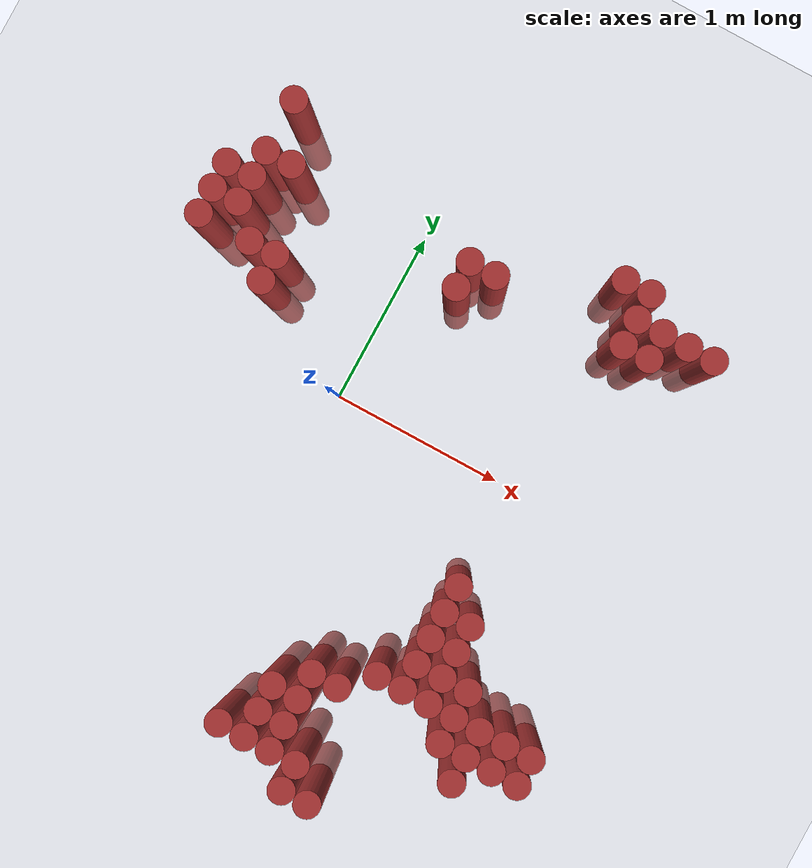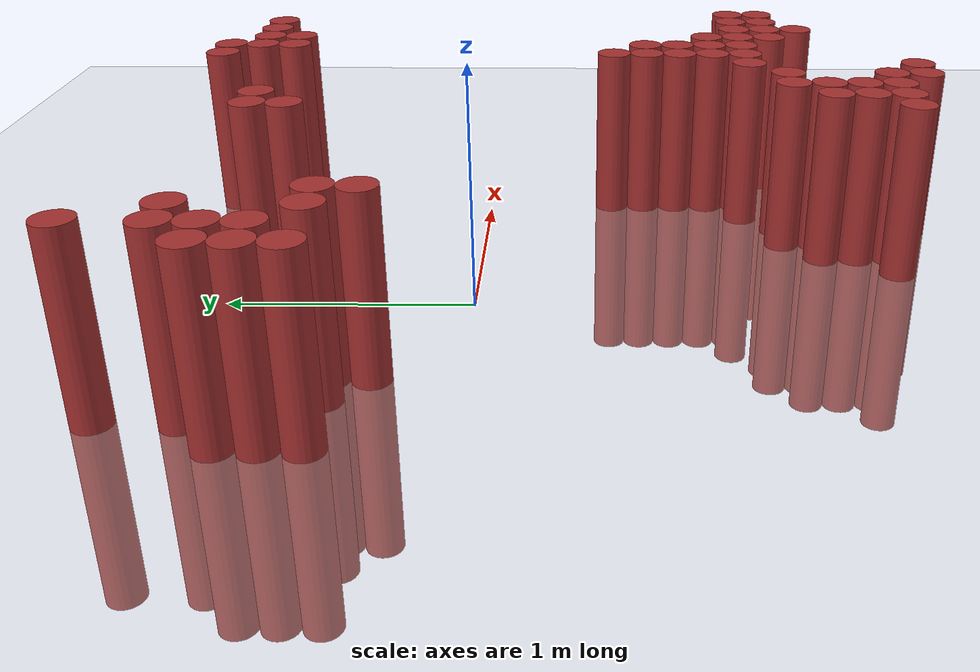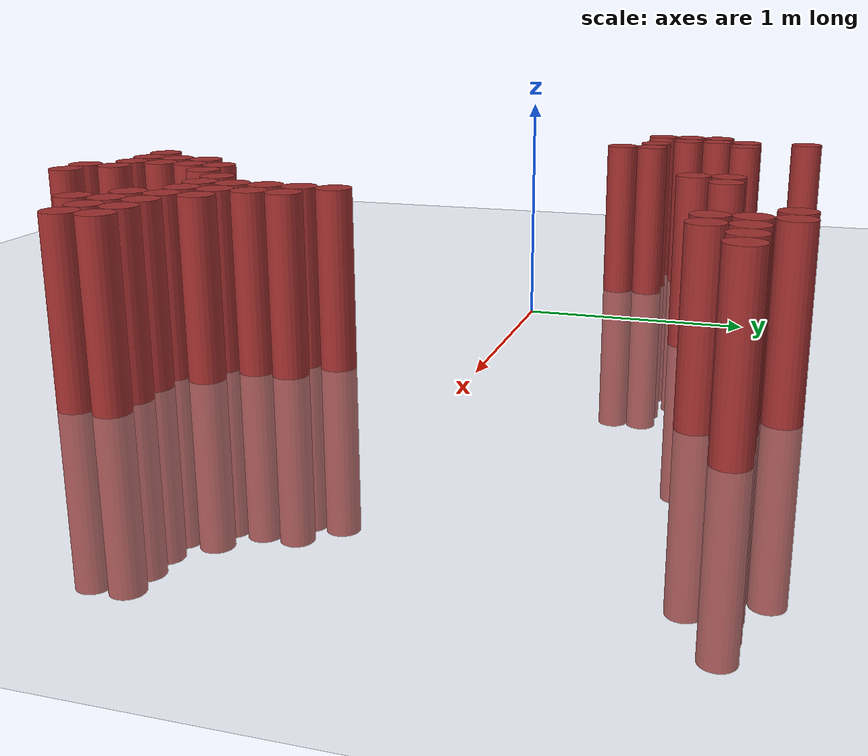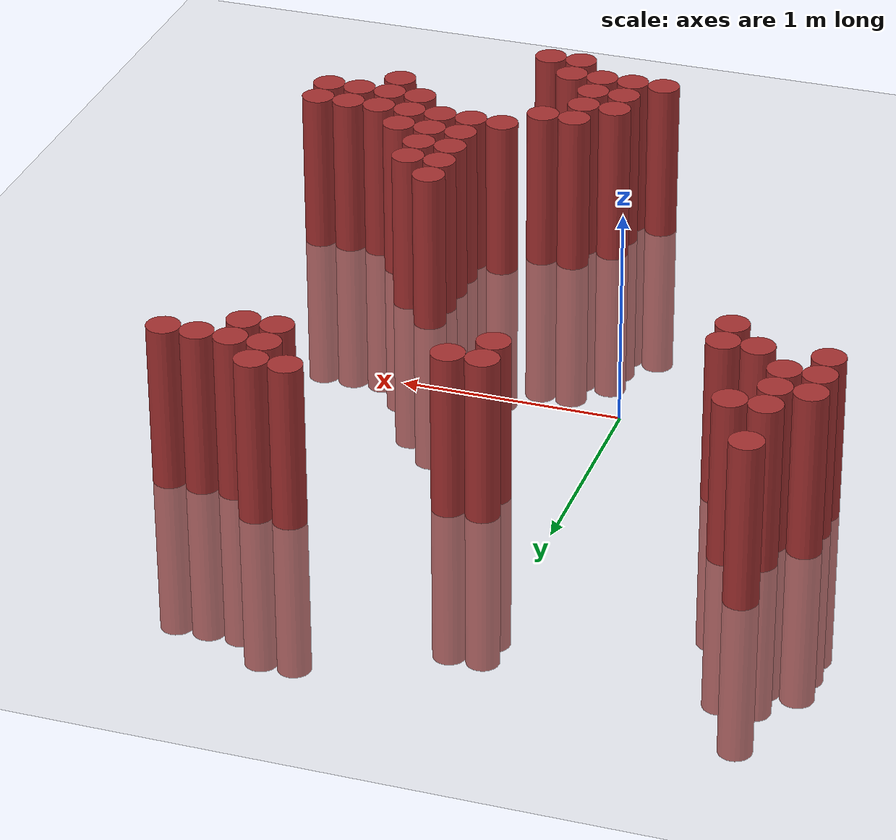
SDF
<sdf version="1.6">
 <world name="default">
  <model name="ground_plane">
   <static>1</static>
   <link name="link">
    <collision name="collision">
     <geometry><plane><normal>0 0 1</normal><size>100 100</size></plane></geometry>
     <surface><friction><ode><mu>100</mu><mu2>50</mu2></ode></friction></surface>
    </collision>
    <visual name="visual">
     <cast_shadows>0</cast_shadows>
     <geometry><plane><normal>0 0 1</normal><size>100 100</size></plane></geometry>
     <material>
      <script><uri>file://media/materials/scripts/gazebo.material</uri><name>Gazebo/Grey</name></script>
     </material>
    </visual>
   </link>
  </model>
  <model name="unit_cylinder_343">
   <static>1</static>
   <pose>-1.025000 0.475000 0.000000 0.000000 0.000000 0.000000</pose>
   <link name="link">
    <inertial>
     <mass>1</mass>
     <inertia><ixx>0.145833</ixx><ixy>0</ixy><ixz>0</ixz><iyy>0.145833</iyy><iyz>0</iyz><izz>0.125</izz></inertia>
    </inertial>
    <collision name="collision">
     <geometry><cylinder><radius>0.075000</radius><length>1.5</length></cylinder></geometry>
    </collision>
    <visual name="visual">
     <geometry><cylinder><radius>0.075000</radius><length>1.5</length></cylinder></geometry>
     <material>
      <ambient>0.648000 0.192000 0.192000 1</ambient>
      <diffuse>0.648000 0.192000 0.192000 1</diffuse>
     </material>
     <material>
      <script><name>Gazebo/Grey</name><uri>file://media/materials/scripts/gazebo.material</uri></script>
     </material>
    </visual>
   </link>
  </model>
  <model name="unit_cylinder_344">
   <static>1</static>
   <pose>-1.025000 0.625000 0.000000 0.000000 0.000000 0.000000</pose>
   <link name="link">
    <inertial>
     <mass>1</mass>
     <inertia><ixx>0.145833</ixx><ixy>0</ixy><ixz>0</ixz><iyy>0.145833</iyy><iyz>0</iyz><izz>0.125</izz></inertia>
    </inertial>
    <collision name="collision">
     <geometry><cylinder><radius>0.075000</radius><length>1.5</length></cylinder></geometry>
    </collision>
    <visual name="visual">
     <geometry><cylinder><radius>0.075000</radius><length>1.5</length></cylinder></geometry>
     <material>
      <ambient>0.648000 0.192000 0.192000 1</ambient>
      <diffuse>0.648000 0.192000 0.192000 1</diffuse>
     </material>
     <material>
      <script><name>Gazebo/Grey</name><uri>file://media/materials/scripts/gazebo.material</uri></script>
     </material>
    </visual>
   </link>
  </model>
  <model name="unit_cylinder_345">
   <static>1</static>
   <pose>-1.025000 0.775000 0.000000 0.000000 0.000000 0.000000</pose>
   <link name="link">
    <inertial>
     <mass>1</mass>
     <inertia><ixx>0.145833</ixx><ixy>0</ixy><ixz>0</ixz><iyy>0.145833</iyy><iyz>0</iyz><izz>0.125</izz></inertia>
    </inertial>
    <collision name="collision">
     <geometry><cylinder><radius>0.075000</radius><length>1.5</length></cylinder></geometry>
    </collision>
    <visual name="visual">
     <geometry><cylinder><radius>0.075000</radius><length>1.5</length></cylinder></geometry>
     <material>
      <ambient>0.648000 0.192000 0.192000 1</ambient>
      <diffuse>0.648000 0.192000 0.192000 1</diffuse>
     </material>
     <material>
      <script><name>Gazebo/Grey</name><uri>file://media/materials/scripts/gazebo.material</uri></script>
     </material>
    </visual>
   </link>
  </model>
  <model name="unit_cylinder_347">
   <static>1</static>
   <pose>-0.875000 0.625000 0.000000 0.000000 0.000000 0.000000</pose>
   <link name="link">
    <inertial>
     <mass>1</mass>
     <inertia><ixx>0.145833</ixx><ixy>0</ixy><ixz>0</ixz><iyy>0.145833</iyy><iyz>0</iyz><izz>0.125</izz></inertia>
    </inertial>
    <collision name="collision">
     <geometry><cylinder><radius>0.075000</radius><length>1.5</length></cylinder></geometry>
    </collision>
    <visual name="visual">
     <geometry><cylinder><radius>0.075000</radius><length>1.5</length></cylinder></geometry>
     <material>
      <ambient>0.648000 0.192000 0.192000 1</ambient>
      <diffuse>0.648000 0.192000 0.192000 1</diffuse>
     </material>
     <material>
      <script><name>Gazebo/Grey</name><uri>file://media/materials/scripts/gazebo.material</uri></script>
     </material>
    </visual>
   </link>
  </model>
  <model name="unit_cylinder_348">
   <static>1</static>
   <pose>-0.875000 0.775000 0.000000 0.000000 0.000000 0.000000</pose>
   <link name="link">
    <inertial>
     <mass>1</mass>
     <inertia><ixx>0.145833</ixx><ixy>0</ixy><ixz>0</ixz><iyy>0.145833</iyy><iyz>0</iyz><izz>0.125</izz></inertia>
    </inertial>
    <collision name="collision">
     <geometry><cylinder><radius>0.075000</radius><length>1.5</length></cylinder></geometry>
    </collision>
    <visual name="visual">
     <geometry><cylinder><radius>0.075000</radius><length>1.5</length></cylinder></geometry>
     <material>
      <ambient>0.648000 0.192000 0.192000 1</ambient>
      <diffuse>0.648000 0.192000 0.192000 1</diffuse>
     </material>
     <material>
      <script><name>Gazebo/Grey</name><uri>file://media/materials/scripts/gazebo.material</uri></script>
     </material>
    </visual>
   </link>
  </model>
  <model name="unit_cylinder_349">
   <static>1</static>
   <pose>-0.875000 0.925000 0.000000 0.000000 0.000000 0.000000</pose>
   <link name="link">
    <inertial>
     <mass>1</mass>
     <inertia><ixx>0.145833</ixx><ixy>0</ixy><ixz>0</ixz><iyy>0.145833</iyy><iyz>0</iyz><izz>0.125</izz></inertia>
    </inertial>
    <collision name="collision">
     <geometry><cylinder><radius>0.075000</radius><length>1.5</length></cylinder></geometry>
    </collision>
    <visual name="visual">
     <geometry><cylinder><radius>0.075000</radius><length>1.5</length></cylinder></geometry>
     <material>
      <ambient>0.648000 0.192000 0.192000 1</ambient>
      <diffuse>0.648000 0.192000 0.192000 1</diffuse>
     </material>
     <material>
      <script><name>Gazebo/Grey</name><uri>file://media/materials/scripts/gazebo.material</uri></script>
     </material>
    </visual>
   </link>
  </model>
  <model name="unit_cylinder_350">
   <static>1</static>
   <pose>-0.875000 1.225000 0.000000 0.000000 0.000000 0.000000</pose>
   <link name="link">
    <inertial>
     <mass>1</mass>
     <inertia><ixx>0.145833</ixx><ixy>0</ixy><ixz>0</ixz><iyy>0.145833</iyy><iyz>0</iyz><izz>0.125</izz></inertia>
    </inertial>
    <collision name="collision">
     <geometry><cylinder><radius>0.075000</radius><length>1.5</length></cylinder></geometry>
    </collision>
    <visual name="visual">
     <geometry><cylinder><radius>0.075000</radius><length>1.5</length></cylinder></geometry>
     <material>
      <ambient>0.648000 0.192000 0.192000 1</ambient>
      <diffuse>0.648000 0.192000 0.192000 1</diffuse>
     </material>
     <material>
      <script><name>Gazebo/Grey</name><uri>file://media/materials/scripts/gazebo.material</uri></script>
     </material>
    </visual>
   </link>
  </model>
  <model name="unit_cylinder_353">
   <static>1</static>
   <pose>-0.725000 0.475000 0.000000 0.000000 0.000000 0.000000</pose>
   <link name="link">
    <inertial>
     <mass>1</mass>
     <inertia><ixx>0.145833</ixx><ixy>0</ixy><ixz>0</ixz><iyy>0.145833</iyy><iyz>0</iyz><izz>0.125</izz></inertia>
    </inertial>
    <collision name="collision">
     <geometry><cylinder><radius>0.075000</radius><length>1.5</length></cylinder></geometry>
    </collision>
    <visual name="visual">
     <geometry><cylinder><radius>0.075000</radius><length>1.5</length></cylinder></geometry>
     <material>
      <ambient>0.648000 0.192000 0.192000 1</ambient>
      <diffuse>0.648000 0.192000 0.192000 1</diffuse>
     </material>
     <material>
      <script><name>Gazebo/Grey</name><uri>file://media/materials/scripts/gazebo.material</uri></script>
     </material>
    </visual>
   </link>
  </model>
  <model name="unit_cylinder_354">
   <static>1</static>
   <pose>-0.725000 0.925000 0.000000 0.000000 0.000000 0.000000</pose>
   <link name="link">
    <inertial>
     <mass>1</mass>
     <inertia><ixx>0.145833</ixx><ixy>0</ixy><ixz>0</ixz><iyy>0.145833</iyy><iyz>0</iyz><izz>0.125</izz></inertia>
    </inertial>
    <collision name="collision">
     <geometry><cylinder><radius>0.075000</radius><length>1.5</length></cylinder></geometry>
    </collision>
    <visual name="visual">
     <geometry><cylinder><radius>0.075000</radius><length>1.5</length></cylinder></geometry>
     <material>
      <ambient>0.648000 0.192000 0.192000 1</ambient>
      <diffuse>0.648000 0.192000 0.192000 1</diffuse>
     </material>
     <material>
      <script><name>Gazebo/Grey</name><uri>file://media/materials/scripts/gazebo.material</uri></script>
     </material>
    </visual>
   </link>
  </model>
  <model name="unit_cylinder_358">
   <static>1</static>
   <pose>-0.575000 0.325000 0.000000 0.000000 0.000000 0.000000</pose>
   <link name="link">
    <inertial>
     <mass>1</mass>
     <inertia><ixx>0.145833</ixx><ixy>0</ixy><ixz>0</ixz><iyy>0.145833</iyy><iyz>0</iyz><izz>0.125</izz></inertia>
    </inertial>
    <collision name="collision">
     <geometry><cylinder><radius>0.075000</radius><length>1.5</length></cylinder></geometry>
    </collision>
    <visual name="visual">
     <geometry><cylinder><radius>0.075000</radius><length>1.5</length></cylinder></geometry>
     <material>
      <ambient>0.648000 0.192000 0.192000 1</ambient>
      <diffuse>0.648000 0.192000 0.192000 1</diffuse>
     </material>
     <material>
      <script><name>Gazebo/Grey</name><uri>file://media/materials/scripts/gazebo.material</uri></script>
     </material>
    </visual>
   </link>
  </model>
  <model name="unit_cylinder_359">
   <static>1</static>
   <pose>-0.575000 0.475000 0.000000 0.000000 0.000000 0.000000</pose>
   <link name="link">
    <inertial>
     <mass>1</mass>
     <inertia><ixx>0.145833</ixx><ixy>0</ixy><ixz>0</ixz><iyy>0.145833</iyy><iyz>0</iyz><izz>0.125</izz></inertia>
    </inertial>
    <collision name="collision">
     <geometry><cylinder><radius>0.075000</radius><length>1.5</length></cylinder></geometry>
    </collision>
    <visual name="visual">
     <geometry><cylinder><radius>0.075000</radius><length>1.5</length></cylinder></geometry>
     <material>
      <ambient>0.648000 0.192000 0.192000 1</ambient>
      <diffuse>0.648000 0.192000 0.192000 1</diffuse>
     </material>
     <material>
      <script><name>Gazebo/Grey</name><uri>file://media/materials/scripts/gazebo.material</uri></script>
     </material>
    </visual>
   </link>
  </model>
  <model name="unit_cylinder_368">
   <static>1</static>
   <pose>0.325000 -1.775000 0.000000 0.000000 0.000000 0.000000</pose>
   <link name="link">
    <inertial>
     <mass>1</mass>
     <inertia><ixx>0.145833</ixx><ixy>0</ixy><ixz>0</ixz><iyy>0.145833</iyy><iyz>0</iyz><izz>0.125</izz></inertia>
    </inertial>
    <collision name="collision">
     <geometry><cylinder><radius>0.075000</radius><length>1.5</length></cylinder></geometry>
    </collision>
    <visual name="visual">
     <geometry><cylinder><radius>0.075000</radius><length>1.5</length></cylinder></geometry>
     <material>
      <ambient>0.648000 0.192000 0.192000 1</ambient>
      <diffuse>0.648000 0.192000 0.192000 1</diffuse>
     </material>
     <material>
      <script><name>Gazebo/Grey</name><uri>file://media/materials/scripts/gazebo.material</uri></script>
     </material>
    </visual>
   </link>
  </model>
  <model name="unit_cylinder_369">
   <static>1</static>
   <pose>0.325000 0.775000 0.000000 0.000000 0.000000 0.000000</pose>
   <link name="link">
    <inertial>
     <mass>1</mass>
     <inertia><ixx>0.145833</ixx><ixy>0</ixy><ixz>0</ixz><iyy>0.145833</iyy><iyz>0</iyz><izz>0.125</izz></inertia>
    </inertial>
    <collision name="collision">
     <geometry><cylinder><radius>0.075000</radius><length>1.5</length></cylinder></geometry>
    </collision>
    <visual name="visual">
     <geometry><cylinder><radius>0.075000</radius><length>1.5</length></cylinder></geometry>
     <material>
      <ambient>0.648000 0.192000 0.192000 1</ambient>
      <diffuse>0.648000 0.192000 0.192000 1</diffuse>
     </material>
     <material>
      <script><name>Gazebo/Grey</name><uri>file://media/materials/scripts/gazebo.material</uri></script>
     </material>
    </visual>
   </link>
  </model>
  <model name="unit_cylinder_370">
   <static>1</static>
   <pose>0.325000 0.925000 0.000000 0.000000 0.000000 0.000000</pose>
   <link name="link">
    <inertial>
     <mass>1</mass>
     <inertia><ixx>0.145833</ixx><ixy>0</ixy><ixz>0</ixz><iyy>0.145833</iyy><iyz>0</iyz><izz>0.125</izz></inertia>
    </inertial>
    <collision name="collision">
     <geometry><cylinder><radius>0.075000</radius><length>1.5</length></cylinder></geometry>
    </collision>
    <visual name="visual">
     <geometry><cylinder><radius>0.075000</radius><length>1.5</length></cylinder></geometry>
     <material>
      <ambient>0.648000 0.192000 0.192000 1</ambient>
      <diffuse>0.648000 0.192000 0.192000 1</diffuse>
     </material>
     <material>
      <script><name>Gazebo/Grey</name><uri>file://media/materials/scripts/gazebo.material</uri></script>
     </material>
    </visual>
   </link>
  </model>
  <model name="unit_cylinder_374">
   <static>1</static>
   <pose>0.475000 -1.775000 0.000000 0.000000 0.000000 0.000000</pose>
   <link name="link">
    <inertial>
     <mass>1</mass>
     <inertia><ixx>0.145833</ixx><ixy>0</ixy><ixz>0</ixz><iyy>0.145833</iyy><iyz>0</iyz><izz>0.125</izz></inertia>
    </inertial>
    <collision name="collision">
     <geometry><cylinder><radius>0.075000</radius><length>1.5</length></cylinder></geometry>
    </collision>
    <visual name="visual">
     <geometry><cylinder><radius>0.075000</radius><length>1.5</length></cylinder></geometry>
     <material>
      <ambient>0.648000 0.192000 0.192000 1</ambient>
      <diffuse>0.648000 0.192000 0.192000 1</diffuse>
     </material>
     <material>
      <script><name>Gazebo/Grey</name><uri>file://media/materials/scripts/gazebo.material</uri></script>
     </material>
    </visual>
   </link>
  </model>
  <model name="unit_cylinder_375">
   <static>1</static>
   <pose>0.475000 -1.625000 0.000000 0.000000 0.000000 0.000000</pose>
   <link name="link">
    <inertial>
     <mass>1</mass>
     <inertia><ixx>0.145833</ixx><ixy>0</ixy><ixz>0</ixz><iyy>0.145833</iyy><iyz>0</iyz><izz>0.125</izz></inertia>
    </inertial>
    <collision name="collision">
     <geometry><cylinder><radius>0.075000</radius><length>1.5</length></cylinder></geometry>
    </collision>
    <visual name="visual">
     <geometry><cylinder><radius>0.075000</radius><length>1.5</length></cylinder></geometry>
     <material>
      <ambient>0.648000 0.192000 0.192000 1</ambient>
      <diffuse>0.648000 0.192000 0.192000 1</diffuse>
     </material>
     <material>
      <script><name>Gazebo/Grey</name><uri>file://media/materials/scripts/gazebo.material</uri></script>
     </material>
    </visual>
   </link>
  </model>
  <model name="unit_cylinder_376">
   <static>1</static>
   <pose>0.475000 -1.475000 0.000000 0.000000 0.000000 0.000000</pose>
   <link name="link">
    <inertial>
     <mass>1</mass>
     <inertia><ixx>0.145833</ixx><ixy>0</ixy><ixz>0</ixz><iyy>0.145833</iyy><iyz>0</iyz><izz>0.125</izz></inertia>
    </inertial>
    <collision name="collision">
     <geometry><cylinder><radius>0.075000</radius><length>1.5</length></cylinder></geometry>
    </collision>
    <visual name="visual">
     <geometry><cylinder><radius>0.075000</radius><length>1.5</length></cylinder></geometry>
     <material>
      <ambient>0.648000 0.192000 0.192000 1</ambient>
      <diffuse>0.648000 0.192000 0.192000 1</diffuse>
     </material>
     <material>
      <script><name>Gazebo/Grey</name><uri>file://media/materials/scripts/gazebo.material</uri></script>
     </material>
    </visual>
   </link>
  </model>
  <model name="unit_cylinder_377">
   <static>1</static>
   <pose>0.475000 0.925000 0.000000 0.000000 0.000000 0.000000</pose>
   <link name="link">
    <inertial>
     <mass>1</mass>
     <inertia><ixx>0.145833</ixx><ixy>0</ixy><ixz>0</ixz><iyy>0.145833</iyy><iyz>0</iyz><izz>0.125</izz></inertia>
    </inertial>
    <collision name="collision">
     <geometry><cylinder><radius>0.075000</radius><length>1.5</length></cylinder></geometry>
    </collision>
    <visual name="visual">
     <geometry><cylinder><radius>0.075000</radius><length>1.5</length></cylinder></geometry>
     <material>
      <ambient>0.648000 0.192000 0.192000 1</ambient>
      <diffuse>0.648000 0.192000 0.192000 1</diffuse>
     </material>
     <material>
      <script><name>Gazebo/Grey</name><uri>file://media/materials/scripts/gazebo.material</uri></script>
     </material>
    </visual>
   </link>
  </model>
  <model name="unit_cylinder_380">
   <static>1</static>
   <pose>0.625000 -1.775000 0.000000 0.000000 0.000000 0.000000</pose>
   <link name="link">
    <inertial>
     <mass>1</mass>
     <inertia><ixx>0.145833</ixx><ixy>0</ixy><ixz>0</ixz><iyy>0.145833</iyy><iyz>0</iyz><izz>0.125</izz></inertia>
    </inertial>
    <collision name="collision">
     <geometry><cylinder><radius>0.075000</radius><length>1.5</length></cylinder></geometry>
    </collision>
    <visual name="visual">
     <geometry><cylinder><radius>0.075000</radius><length>1.5</length></cylinder></geometry>
     <material>
      <ambient>0.648000 0.192000 0.192000 1</ambient>
      <diffuse>0.648000 0.192000 0.192000 1</diffuse>
     </material>
     <material>
      <script><name>Gazebo/Grey</name><uri>file://media/materials/scripts/gazebo.material</uri></script>
     </material>
    </visual>
   </link>
  </model>
  <model name="unit_cylinder_381">
   <static>1</static>
   <pose>0.625000 -1.625000 0.000000 0.000000 0.000000 0.000000</pose>
   <link name="link">
    <inertial>
     <mass>1</mass>
     <inertia><ixx>0.145833</ixx><ixy>0</ixy><ixz>0</ixz><iyy>0.145833</iyy><iyz>0</iyz><izz>0.125</izz></inertia>
    </inertial>
    <collision name="collision">
     <geometry><cylinder><radius>0.075000</radius><length>1.5</length></cylinder></geometry>
    </collision>
    <visual name="visual">
     <geometry><cylinder><radius>0.075000</radius><length>1.5</length></cylinder></geometry>
     <material>
      <ambient>0.648000 0.192000 0.192000 1</ambient>
      <diffuse>0.648000 0.192000 0.192000 1</diffuse>
     </material>
     <material>
      <script><name>Gazebo/Grey</name><uri>file://media/materials/scripts/gazebo.material</uri></script>
     </material>
    </visual>
   </link>
  </model>
  <model name="unit_cylinder_382">
   <static>1</static>
   <pose>0.625000 -1.475000 0.000000 0.000000 0.000000 0.000000</pose>
   <link name="link">
    <inertial>
     <mass>1</mass>
     <inertia><ixx>0.145833</ixx><ixy>0</ixy><ixz>0</ixz><iyy>0.145833</iyy><iyz>0</iyz><izz>0.125</izz></inertia>
    </inertial>
    <collision name="collision">
     <geometry><cylinder><radius>0.075000</radius><length>1.5</length></cylinder></geometry>
    </collision>
    <visual name="visual">
     <geometry><cylinder><radius>0.075000</radius><length>1.5</length></cylinder></geometry>
     <material>
      <ambient>0.648000 0.192000 0.192000 1</ambient>
      <diffuse>0.648000 0.192000 0.192000 1</diffuse>
     </material>
     <material>
      <script><name>Gazebo/Grey</name><uri>file://media/materials/scripts/gazebo.material</uri></script>
     </material>
    </visual>
   </link>
  </model>
  <model name="unit_cylinder_383">
   <static>1</static>
   <pose>0.625000 -1.325000 0.000000 0.000000 0.000000 0.000000</pose>
   <link name="link">
    <inertial>
     <mass>1</mass>
     <inertia><ixx>0.145833</ixx><ixy>0</ixy><ixz>0</ixz><iyy>0.145833</iyy><iyz>0</iyz><izz>0.125</izz></inertia>
    </inertial>
    <collision name="collision">
     <geometry><cylinder><radius>0.075000</radius><length>1.5</length></cylinder></geometry>
    </collision>
    <visual name="visual">
     <geometry><cylinder><radius>0.075000</radius><length>1.5</length></cylinder></geometry>
     <material>
      <ambient>0.648000 0.192000 0.192000 1</ambient>
      <diffuse>0.648000 0.192000 0.192000 1</diffuse>
     </material>
     <material>
      <script><name>Gazebo/Grey</name><uri>file://media/materials/scripts/gazebo.material</uri></script>
     </material>
    </visual>
   </link>
  </model>
  <model name="unit_cylinder_384">
   <static>1</static>
   <pose>0.775000 -1.925000 0.000000 0.000000 0.000000 0.000000</pose>
   <link name="link">
    <inertial>
     <mass>1</mass>
     <inertia><ixx>0.145833</ixx><ixy>0</ixy><ixz>0</ixz><iyy>0.145833</iyy><iyz>0</iyz><izz>0.125</izz></inertia>
    </inertial>
    <collision name="collision">
     <geometry><cylinder><radius>0.075000</radius><length>1.5</length></cylinder></geometry>
    </collision>
    <visual name="visual">
     <geometry><cylinder><radius>0.075000</radius><length>1.5</length></cylinder></geometry>
     <material>
      <ambient>0.648000 0.192000 0.192000 1</ambient>
      <diffuse>0.648000 0.192000 0.192000 1</diffuse>
     </material>
     <material>
      <script><name>Gazebo/Grey</name><uri>file://media/materials/scripts/gazebo.material</uri></script>
     </material>
    </visual>
   </link>
  </model>
  <model name="unit_cylinder_385">
   <static>1</static>
   <pose>0.775000 -1.775000 0.000000 0.000000 0.000000 0.000000</pose>
   <link name="link">
    <inertial>
     <mass>1</mass>
     <inertia><ixx>0.145833</ixx><ixy>0</ixy><ixz>0</ixz><iyy>0.145833</iyy><iyz>0</iyz><izz>0.125</izz></inertia>
    </inertial>
    <collision name="collision">
     <geometry><cylinder><radius>0.075000</radius><length>1.5</length></cylinder></geometry>
    </collision>
    <visual name="visual">
     <geometry><cylinder><radius>0.075000</radius><length>1.5</length></cylinder></geometry>
     <material>
      <ambient>0.648000 0.192000 0.192000 1</ambient>
      <diffuse>0.648000 0.192000 0.192000 1</diffuse>
     </material>
     <material>
      <script><name>Gazebo/Grey</name><uri>file://media/materials/scripts/gazebo.material</uri></script>
     </material>
    </visual>
   </link>
  </model>
  <model name="unit_cylinder_386">
   <static>1</static>
   <pose>0.775000 -1.325000 0.000000 0.000000 0.000000 0.000000</pose>
   <link name="link">
    <inertial>
     <mass>1</mass>
     <inertia><ixx>0.145833</ixx><ixy>0</ixy><ixz>0</ixz><iyy>0.145833</iyy><iyz>0</iyz><izz>0.125</izz></inertia>
    </inertial>
    <collision name="collision">
     <geometry><cylinder><radius>0.075000</radius><length>1.5</length></cylinder></geometry>
    </collision>
    <visual name="visual">
     <geometry><cylinder><radius>0.075000</radius><length>1.5</length></cylinder></geometry>
     <material>
      <ambient>0.648000 0.192000 0.192000 1</ambient>
      <diffuse>0.648000 0.192000 0.192000 1</diffuse>
     </material>
     <material>
      <script><name>Gazebo/Grey</name><uri>file://media/materials/scripts/gazebo.material</uri></script>
     </material>
    </visual>
   </link>
  </model>
  <model name="unit_cylinder_387">
   <static>1</static>
   <pose>0.925000 -1.925000 0.000000 0.000000 0.000000 0.000000</pose>
   <link name="link">
    <inertial>
     <mass>1</mass>
     <inertia><ixx>0.145833</ixx><ixy>0</ixy><ixz>0</ixz><iyy>0.145833</iyy><iyz>0</iyz><izz>0.125</izz></inertia>
    </inertial>
    <collision name="collision">
     <geometry><cylinder><radius>0.075000</radius><length>1.5</length></cylinder></geometry>
    </collision>
    <visual name="visual">
     <geometry><cylinder><radius>0.075000</radius><length>1.5</length></cylinder></geometry>
     <material>
      <ambient>0.648000 0.192000 0.192000 1</ambient>
      <diffuse>0.648000 0.192000 0.192000 1</diffuse>
     </material>
     <material>
      <script><name>Gazebo/Grey</name><uri>file://media/materials/scripts/gazebo.material</uri></script>
     </material>
    </visual>
   </link>
  </model>
  <model name="unit_cylinder_388">
   <static>1</static>
   <pose>0.925000 -1.175000 0.000000 0.000000 0.000000 0.000000</pose>
   <link name="link">
    <inertial>
     <mass>1</mass>
     <inertia><ixx>0.145833</ixx><ixy>0</ixy><ixz>0</ixz><iyy>0.145833</iyy><iyz>0</iyz><izz>0.125</izz></inertia>
    </inertial>
    <collision name="collision">
     <geometry><cylinder><radius>0.075000</radius><length>1.5</length></cylinder></geometry>
    </collision>
    <visual name="visual">
     <geometry><cylinder><radius>0.075000</radius><length>1.5</length></cylinder></geometry>
     <material>
      <ambient>0.648000 0.192000 0.192000 1</ambient>
      <diffuse>0.648000 0.192000 0.192000 1</diffuse>
     </material>
     <material>
      <script><name>Gazebo/Grey</name><uri>file://media/materials/scripts/gazebo.material</uri></script>
     </material>
    </visual>
   </link>
  </model>
  <model name="unit_cylinder_389">
   <static>1</static>
   <pose>1.075000 -1.175000 0.000000 0.000000 0.000000 0.000000</pose>
   <link name="link">
    <inertial>
     <mass>1</mass>
     <inertia><ixx>0.145833</ixx><ixy>0</ixy><ixz>0</ixz><iyy>0.145833</iyy><iyz>0</iyz><izz>0.125</izz></inertia>
    </inertial>
    <collision name="collision">
     <geometry><cylinder><radius>0.075000</radius><length>1.5</length></cylinder></geometry>
    </collision>
    <visual name="visual">
     <geometry><cylinder><radius>0.075000</radius><length>1.5</length></cylinder></geometry>
     <material>
      <ambient>0.648000 0.192000 0.192000 1</ambient>
      <diffuse>0.648000 0.192000 0.192000 1</diffuse>
     </material>
     <material>
      <script><name>Gazebo/Grey</name><uri>file://media/materials/scripts/gazebo.material</uri></script>
     </material>
    </visual>
   </link>
  </model>
  <model name="unit_cylinder_390">
   <static>1</static>
   <pose>1.075000 -1.025000 0.000000 0.000000 0.000000 0.000000</pose>
   <link name="link">
    <inertial>
     <mass>1</mass>
     <inertia><ixx>0.145833</ixx><ixy>0</ixy><ixz>0</ixz><iyy>0.145833</iyy><iyz>0</iyz><izz>0.125</izz></inertia>
    </inertial>
    <collision name="collision">
     <geometry><cylinder><radius>0.075000</radius><length>1.5</length></cylinder></geometry>
    </collision>
    <visual name="visual">
     <geometry><cylinder><radius>0.075000</radius><length>1.5</length></cylinder></geometry>
     <material>
      <ambient>0.648000 0.192000 0.192000 1</ambient>
      <diffuse>0.648000 0.192000 0.192000 1</diffuse>
     </material>
     <material>
      <script><name>Gazebo/Grey</name><uri>file://media/materials/scripts/gazebo.material</uri></script>
     </material>
    </visual>
   </link>
  </model>
  <model name="unit_cylinder_391">
   <static>1</static>
   <pose>1.075000 -0.875000 0.000000 0.000000 0.000000 0.000000</pose>
   <link name="link">
    <inertial>
     <mass>1</mass>
     <inertia><ixx>0.145833</ixx><ixy>0</ixy><ixz>0</ixz><iyy>0.145833</iyy><iyz>0</iyz><izz>0.125</izz></inertia>
    </inertial>
    <collision name="collision">
     <geometry><cylinder><radius>0.075000</radius><length>1.5</length></cylinder></geometry>
    </collision>
    <visual name="visual">
     <geometry><cylinder><radius>0.075000</radius><length>1.5</length></cylinder></geometry>
     <material>
      <ambient>0.648000 0.192000 0.192000 1</ambient>
      <diffuse>0.648000 0.192000 0.192000 1</diffuse>
     </material>
     <material>
      <script><name>Gazebo/Grey</name><uri>file://media/materials/scripts/gazebo.material</uri></script>
     </material>
    </visual>
   </link>
  </model>
  <model name="unit_cylinder_392">
   <static>1</static>
   <pose>1.075000 -0.725000 0.000000 0.000000 0.000000 0.000000</pose>
   <link name="link">
    <inertial>
     <mass>1</mass>
     <inertia><ixx>0.145833</ixx><ixy>0</ixy><ixz>0</ixz><iyy>0.145833</iyy><iyz>0</iyz><izz>0.125</izz></inertia>
    </inertial>
    <collision name="collision">
     <geometry><cylinder><radius>0.075000</radius><length>1.5</length></cylinder></geometry>
    </collision>
    <visual name="visual">
     <geometry><cylinder><radius>0.075000</radius><length>1.5</length></cylinder></geometry>
     <material>
      <ambient>0.648000 0.192000 0.192000 1</ambient>
      <diffuse>0.648000 0.192000 0.192000 1</diffuse>
     </material>
     <material>
      <script><name>Gazebo/Grey</name><uri>file://media/materials/scripts/gazebo.material</uri></script>
     </material>
    </visual>
   </link>
  </model>
  <model name="unit_cylinder_393">
   <static>1</static>
   <pose>1.075000 -0.575000 0.000000 0.000000 0.000000 0.000000</pose>
   <link name="link">
    <inertial>
     <mass>1</mass>
     <inertia><ixx>0.145833</ixx><ixy>0</ixy><ixz>0</ixz><iyy>0.145833</iyy><iyz>0</iyz><izz>0.125</izz></inertia>
    </inertial>
    <collision name="collision">
     <geometry><cylinder><radius>0.075000</radius><length>1.5</length></cylinder></geometry>
    </collision>
    <visual name="visual">
     <geometry><cylinder><radius>0.075000</radius><length>1.5</length></cylinder></geometry>
     <material>
      <ambient>0.648000 0.192000 0.192000 1</ambient>
      <diffuse>0.648000 0.192000 0.192000 1</diffuse>
     </material>
     <material>
      <script><name>Gazebo/Grey</name><uri>file://media/materials/scripts/gazebo.material</uri></script>
     </material>
    </visual>
   </link>
  </model>
  <model name="unit_cylinder_394">
   <static>1</static>
   <pose>1.075000 1.225000 0.000000 0.000000 0.000000 0.000000</pose>
   <link name="link">
    <inertial>
     <mass>1</mass>
     <inertia><ixx>0.145833</ixx><ixy>0</ixy><ixz>0</ixz><iyy>0.145833</iyy><iyz>0</iyz><izz>0.125</izz></inertia>
    </inertial>
    <collision name="collision">
     <geometry><cylinder><radius>0.075000</radius><length>1.5</length></cylinder></geometry>
    </collision>
    <visual name="visual">
     <geometry><cylinder><radius>0.075000</radius><length>1.5</length></cylinder></geometry>
     <material>
      <ambient>0.648000 0.192000 0.192000 1</ambient>
      <diffuse>0.648000 0.192000 0.192000 1</diffuse>
     </material>
     <material>
      <script><name>Gazebo/Grey</name><uri>file://media/materials/scripts/gazebo.material</uri></script>
     </material>
    </visual>
   </link>
  </model>
  <model name="unit_cylinder_396">
   <static>1</static>
   <pose>1.225000 -1.175000 0.000000 0.000000 0.000000 0.000000</pose>
   <link name="link">
    <inertial>
     <mass>1</mass>
     <inertia><ixx>0.145833</ixx><ixy>0</ixy><ixz>0</ixz><iyy>0.145833</iyy><iyz>0</iyz><izz>0.125</izz></inertia>
    </inertial>
    <collision name="collision">
     <geometry><cylinder><radius>0.075000</radius><length>1.5</length></cylinder></geometry>
    </collision>
    <visual name="visual">
     <geometry><cylinder><radius>0.075000</radius><length>1.5</length></cylinder></geometry>
     <material>
      <ambient>0.648000 0.192000 0.192000 1</ambient>
      <diffuse>0.648000 0.192000 0.192000 1</diffuse>
     </material>
     <material>
      <script><name>Gazebo/Grey</name><uri>file://media/materials/scripts/gazebo.material</uri></script>
     </material>
    </visual>
   </link>
  </model>
  <model name="unit_cylinder_397">
   <static>1</static>
   <pose>1.225000 -1.025000 0.000000 0.000000 0.000000 0.000000</pose>
   <link name="link">
    <inertial>
     <mass>1</mass>
     <inertia><ixx>0.145833</ixx><ixy>0</ixy><ixz>0</ixz><iyy>0.145833</iyy><iyz>0</iyz><izz>0.125</izz></inertia>
    </inertial>
    <collision name="collision">
     <geometry><cylinder><radius>0.075000</radius><length>1.5</length></cylinder></geometry>
    </collision>
    <visual name="visual">
     <geometry><cylinder><radius>0.075000</radius><length>1.5</length></cylinder></geometry>
     <material>
      <ambient>0.648000 0.192000 0.192000 1</ambient>
      <diffuse>0.648000 0.192000 0.192000 1</diffuse>
     </material>
     <material>
      <script><name>Gazebo/Grey</name><uri>file://media/materials/scripts/gazebo.material</uri></script>
     </material>
    </visual>
   </link>
  </model>
  <model name="unit_cylinder_398">
   <static>1</static>
   <pose>1.225000 -0.875000 0.000000 0.000000 0.000000 0.000000</pose>
   <link name="link">
    <inertial>
     <mass>1</mass>
     <inertia><ixx>0.145833</ixx><ixy>0</ixy><ixz>0</ixz><iyy>0.145833</iyy><iyz>0</iyz><izz>0.125</izz></inertia>
    </inertial>
    <collision name="collision">
     <geometry><cylinder><radius>0.075000</radius><length>1.5</length></cylinder></geometry>
    </collision>
    <visual name="visual">
     <geometry><cylinder><radius>0.075000</radius><length>1.5</length></cylinder></geometry>
     <material>
      <ambient>0.648000 0.192000 0.192000 1</ambient>
      <diffuse>0.648000 0.192000 0.192000 1</diffuse>
     </material>
     <material>
      <script><name>Gazebo/Grey</name><uri>file://media/materials/scripts/gazebo.material</uri></script>
     </material>
    </visual>
   </link>
  </model>
  <model name="unit_cylinder_399">
   <static>1</static>
   <pose>1.225000 -0.725000 0.000000 0.000000 0.000000 0.000000</pose>
   <link name="link">
    <inertial>
     <mass>1</mass>
     <inertia><ixx>0.145833</ixx><ixy>0</ixy><ixz>0</ixz><iyy>0.145833</iyy><iyz>0</iyz><izz>0.125</izz></inertia>
    </inertial>
    <collision name="collision">
     <geometry><cylinder><radius>0.075000</radius><length>1.5</length></cylinder></geometry>
    </collision>
    <visual name="visual">
     <geometry><cylinder><radius>0.075000</radius><length>1.5</length></cylinder></geometry>
     <material>
      <ambient>0.648000 0.192000 0.192000 1</ambient>
      <diffuse>0.648000 0.192000 0.192000 1</diffuse>
     </material>
     <material>
      <script><name>Gazebo/Grey</name><uri>file://media/materials/scripts/gazebo.material</uri></script>
     </material>
    </visual>
   </link>
  </model>
  <model name="unit_cylinder_400">
   <static>1</static>
   <pose>1.225000 0.925000 0.000000 0.000000 0.000000 0.000000</pose>
   <link name="link">
    <inertial>
     <mass>1</mass>
     <inertia><ixx>0.145833</ixx><ixy>0</ixy><ixz>0</ixz><iyy>0.145833</iyy><iyz>0</iyz><izz>0.125</izz></inertia>
    </inertial>
    <collision name="collision">
     <geometry><cylinder><radius>0.075000</radius><length>1.5</length></cylinder></geometry>
    </collision>
    <visual name="visual">
     <geometry><cylinder><radius>0.075000</radius><length>1.5</length></cylinder></geometry>
     <material>
      <ambient>0.648000 0.192000 0.192000 1</ambient>
      <diffuse>0.648000 0.192000 0.192000 1</diffuse>
     </material>
     <material>
      <script><name>Gazebo/Grey</name><uri>file://media/materials/scripts/gazebo.material</uri></script>
     </material>
    </visual>
   </link>
  </model>
  <model name="unit_cylinder_401">
   <static>1</static>
   <pose>1.225000 1.075000 0.000000 0.000000 0.000000 0.000000</pose>
   <link name="link">
    <inertial>
     <mass>1</mass>
     <inertia><ixx>0.145833</ixx><ixy>0</ixy><ixz>0</ixz><iyy>0.145833</iyy><iyz>0</iyz><izz>0.125</izz></inertia>
    </inertial>
    <collision name="collision">
     <geometry><cylinder><radius>0.075000</radius><length>1.5</length></cylinder></geometry>
    </collision>
    <visual name="visual">
     <geometry><cylinder><radius>0.075000</radius><length>1.5</length></cylinder></geometry>
     <material>
      <ambient>0.648000 0.192000 0.192000 1</ambient>
      <diffuse>0.648000 0.192000 0.192000 1</diffuse>
     </material>
     <material>
      <script><name>Gazebo/Grey</name><uri>file://media/materials/scripts/gazebo.material</uri></script>
     </material>
    </visual>
   </link>
  </model>
  <model name="unit_cylinder_402">
   <static>1</static>
   <pose>1.225000 1.225000 0.000000 0.000000 0.000000 0.000000</pose>
   <link name="link">
    <inertial>
     <mass>1</mass>
     <inertia><ixx>0.145833</ixx><ixy>0</ixy><ixz>0</ixz><iyy>0.145833</iyy><iyz>0</iyz><izz>0.125</izz></inertia>
    </inertial>
    <collision name="collision">
     <geometry><cylinder><radius>0.075000</radius><length>1.5</length></cylinder></geometry>
    </collision>
    <visual name="visual">
     <geometry><cylinder><radius>0.075000</radius><length>1.5</length></cylinder></geometry>
     <material>
      <ambient>0.648000 0.192000 0.192000 1</ambient>
      <diffuse>0.648000 0.192000 0.192000 1</diffuse>
     </material>
     <material>
      <script><name>Gazebo/Grey</name><uri>file://media/materials/scripts/gazebo.material</uri></script>
     </material>
    </visual>
   </link>
  </model>
  <model name="unit_cylinder_403">
   <static>1</static>
   <pose>1.375000 -1.325000 0.000000 0.000000 0.000000 0.000000</pose>
   <link name="link">
    <inertial>
     <mass>1</mass>
     <inertia><ixx>0.145833</ixx><ixy>0</ixy><ixz>0</ixz><iyy>0.145833</iyy><iyz>0</iyz><izz>0.125</izz></inertia>
    </inertial>
    <collision name="collision">
     <geometry><cylinder><radius>0.075000</radius><length>1.5</length></cylinder></geometry>
    </collision>
    <visual name="visual">
     <geometry><cylinder><radius>0.075000</radius><length>1.5</length></cylinder></geometry>
     <material>
      <ambient>0.648000 0.192000 0.192000 1</ambient>
      <diffuse>0.648000 0.192000 0.192000 1</diffuse>
     </material>
     <material>
      <script><name>Gazebo/Grey</name><uri>file://media/materials/scripts/gazebo.material</uri></script>
     </material>
    </visual>
   </link>
  </model>
  <model name="unit_cylinder_404">
   <static>1</static>
   <pose>1.375000 -1.175000 0.000000 0.000000 0.000000 0.000000</pose>
   <link name="link">
    <inertial>
     <mass>1</mass>
     <inertia><ixx>0.145833</ixx><ixy>0</ixy><ixz>0</ixz><iyy>0.145833</iyy><iyz>0</iyz><izz>0.125</izz></inertia>
    </inertial>
    <collision name="collision">
     <geometry><cylinder><radius>0.075000</radius><length>1.5</length></cylinder></geometry>
    </collision>
    <visual name="visual">
     <geometry><cylinder><radius>0.075000</radius><length>1.5</length></cylinder></geometry>
     <material>
      <ambient>0.648000 0.192000 0.192000 1</ambient>
      <diffuse>0.648000 0.192000 0.192000 1</diffuse>
     </material>
     <material>
      <script><name>Gazebo/Grey</name><uri>file://media/materials/scripts/gazebo.material</uri></script>
     </material>
    </visual>
   </link>
  </model>
  <model name="unit_cylinder_405">
   <static>1</static>
   <pose>1.375000 -1.025000 0.000000 0.000000 0.000000 0.000000</pose>
   <link name="link">
    <inertial>
     <mass>1</mass>
     <inertia><ixx>0.145833</ixx><ixy>0</ixy><ixz>0</ixz><iyy>0.145833</iyy><iyz>0</iyz><izz>0.125</izz></inertia>
    </inertial>
    <collision name="collision">
     <geometry><cylinder><radius>0.075000</radius><length>1.5</length></cylinder></geometry>
    </collision>
    <visual name="visual">
     <geometry><cylinder><radius>0.075000</radius><length>1.5</length></cylinder></geometry>
     <material>
      <ambient>0.648000 0.192000 0.192000 1</ambient>
      <diffuse>0.648000 0.192000 0.192000 1</diffuse>
     </material>
     <material>
      <script><name>Gazebo/Grey</name><uri>file://media/materials/scripts/gazebo.material</uri></script>
     </material>
    </visual>
   </link>
  </model>
  <model name="unit_cylinder_406">
   <static>1</static>
   <pose>1.375000 0.925000 0.000000 0.000000 0.000000 0.000000</pose>
   <link name="link">
    <inertial>
     <mass>1</mass>
     <inertia><ixx>0.145833</ixx><ixy>0</ixy><ixz>0</ixz><iyy>0.145833</iyy><iyz>0</iyz><izz>0.125</izz></inertia>
    </inertial>
    <collision name="collision">
     <geometry><cylinder><radius>0.075000</radius><length>1.5</length></cylinder></geometry>
    </collision>
    <visual name="visual">
     <geometry><cylinder><radius>0.075000</radius><length>1.5</length></cylinder></geometry>
     <material>
      <ambient>0.648000 0.192000 0.192000 1</ambient>
      <diffuse>0.648000 0.192000 0.192000 1</diffuse>
     </material>
     <material>
      <script><name>Gazebo/Grey</name><uri>file://media/materials/scripts/gazebo.material</uri></script>
     </material>
    </visual>
   </link>
  </model>
  <model name="unit_cylinder_407">
   <static>1</static>
   <pose>1.375000 1.075000 0.000000 0.000000 0.000000 0.000000</pose>
   <link name="link">
    <inertial>
     <mass>1</mass>
     <inertia><ixx>0.145833</ixx><ixy>0</ixy><ixz>0</ixz><iyy>0.145833</iyy><iyz>0</iyz><izz>0.125</izz></inertia>
    </inertial>
    <collision name="collision">
     <geometry><cylinder><radius>0.075000</radius><length>1.5</length></cylinder></geometry>
    </collision>
    <visual name="visual">
     <geometry><cylinder><radius>0.075000</radius><length>1.5</length></cylinder></geometry>
     <material>
      <ambient>0.648000 0.192000 0.192000 1</ambient>
      <diffuse>0.648000 0.192000 0.192000 1</diffuse>
     </material>
     <material>
      <script><name>Gazebo/Grey</name><uri>file://media/materials/scripts/gazebo.material</uri></script>
     </material>
    </visual>
   </link>
  </model>
  <model name="unit_cylinder_410">
   <static>1</static>
   <pose>1.525000 -1.475000 0.000000 0.000000 0.000000 0.000000</pose>
   <link name="link">
    <inertial>
     <mass>1</mass>
     <inertia><ixx>0.145833</ixx><ixy>0</ixy><ixz>0</ixz><iyy>0.145833</iyy><iyz>0</iyz><izz>0.125</izz></inertia>
    </inertial>
    <collision name="collision">
     <geometry><cylinder><radius>0.075000</radius><length>1.5</length></cylinder></geometry>
    </collision>
    <visual name="visual">
     <geometry><cylinder><radius>0.075000</radius><length>1.5</length></cylinder></geometry>
     <material>
      <ambient>0.648000 0.192000 0.192000 1</ambient>
      <diffuse>0.648000 0.192000 0.192000 1</diffuse>
     </material>
     <material>
      <script><name>Gazebo/Grey</name><uri>file://media/materials/scripts/gazebo.material</uri></script>
     </material>
    </visual>
   </link>
  </model>
  <model name="unit_cylinder_411">
   <static>1</static>
   <pose>1.525000 -1.325000 0.000000 0.000000 0.000000 0.000000</pose>
   <link name="link">
    <inertial>
     <mass>1</mass>
     <inertia><ixx>0.145833</ixx><ixy>0</ixy><ixz>0</ixz><iyy>0.145833</iyy><iyz>0</iyz><izz>0.125</izz></inertia>
    </inertial>
    <collision name="collision">
     <geometry><cylinder><radius>0.075000</radius><length>1.5</length></cylinder></geometry>
    </collision>
    <visual name="visual">
     <geometry><cylinder><radius>0.075000</radius><length>1.5</length></cylinder></geometry>
     <material>
      <ambient>0.648000 0.192000 0.192000 1</ambient>
      <diffuse>0.648000 0.192000 0.192000 1</diffuse>
     </material>
     <material>
      <script><name>Gazebo/Grey</name><uri>file://media/materials/scripts/gazebo.material</uri></script>
     </material>
    </visual>
   </link>
  </model>
  <model name="unit_cylinder_412">
   <static>1</static>
   <pose>1.525000 -1.175000 0.000000 0.000000 0.000000 0.000000</pose>
   <link name="link">
    <inertial>
     <mass>1</mass>
     <inertia><ixx>0.145833</ixx><ixy>0</ixy><ixz>0</ixz><iyy>0.145833</iyy><iyz>0</iyz><izz>0.125</izz></inertia>
    </inertial>
    <collision name="collision">
     <geometry><cylinder><radius>0.075000</radius><length>1.5</length></cylinder></geometry>
    </collision>
    <visual name="visual">
     <geometry><cylinder><radius>0.075000</radius><length>1.5</length></cylinder></geometry>
     <material>
      <ambient>0.648000 0.192000 0.192000 1</ambient>
      <diffuse>0.648000 0.192000 0.192000 1</diffuse>
     </material>
     <material>
      <script><name>Gazebo/Grey</name><uri>file://media/materials/scripts/gazebo.material</uri></script>
     </material>
    </visual>
   </link>
  </model>
  <model name="unit_cylinder_413">
   <static>1</static>
   <pose>1.525000 1.075000 0.000000 0.000000 0.000000 0.000000</pose>
   <link name="link">
    <inertial>
     <mass>1</mass>
     <inertia><ixx>0.145833</ixx><ixy>0</ixy><ixz>0</ixz><iyy>0.145833</iyy><iyz>0</iyz><izz>0.125</izz></inertia>
    </inertial>
    <collision name="collision">
     <geometry><cylinder><radius>0.075000</radius><length>1.5</length></cylinder></geometry>
    </collision>
    <visual name="visual">
     <geometry><cylinder><radius>0.075000</radius><length>1.5</length></cylinder></geometry>
     <material>
      <ambient>0.648000 0.192000 0.192000 1</ambient>
      <diffuse>0.648000 0.192000 0.192000 1</diffuse>
     </material>
     <material>
      <script><name>Gazebo/Grey</name><uri>file://media/materials/scripts/gazebo.material</uri></script>
     </material>
    </visual>
   </link>
  </model>
  <model name="unit_cylinder_415">
   <static>1</static>
   <pose>1.675000 -1.325000 0.000000 0.000000 0.000000 0.000000</pose>
   <link name="link">
    <inertial>
     <mass>1</mass>
     <inertia><ixx>0.145833</ixx><ixy>0</ixy><ixz>0</ixz><iyy>0.145833</iyy><iyz>0</iyz><izz>0.125</izz></inertia>
    </inertial>
    <collision name="collision">
     <geometry><cylinder><radius>0.075000</radius><length>1.5</length></cylinder></geometry>
    </collision>
    <visual name="visual">
     <geometry><cylinder><radius>0.075000</radius><length>1.5</length></cylinder></geometry>
     <material>
      <ambient>0.648000 0.192000 0.192000 1</ambient>
      <diffuse>0.648000 0.192000 0.192000 1</diffuse>
     </material>
     <material>
      <script><name>Gazebo/Grey</name><uri>file://media/materials/scripts/gazebo.material</uri></script>
     </material>
    </visual>
   </link>
  </model>
  <model name="unit_cylinder_416">
   <static>1</static>
   <pose>1.675000 -1.175000 0.000000 0.000000 0.000000 0.000000</pose>
   <link name="link">
    <inertial>
     <mass>1</mass>
     <inertia><ixx>0.145833</ixx><ixy>0</ixy><ixz>0</ixz><iyy>0.145833</iyy><iyz>0</iyz><izz>0.125</izz></inertia>
    </inertial>
    <collision name="collision">
     <geometry><cylinder><radius>0.075000</radius><length>1.5</length></cylinder></geometry>
    </collision>
    <visual name="visual">
     <geometry><cylinder><radius>0.075000</radius><length>1.5</length></cylinder></geometry>
     <material>
      <ambient>0.648000 0.192000 0.192000 1</ambient>
      <diffuse>0.648000 0.192000 0.192000 1</diffuse>
     </material>
     <material>
      <script><name>Gazebo/Grey</name><uri>file://media/materials/scripts/gazebo.material</uri></script>
     </material>
    </visual>
   </link>
  </model>
  <model name="unit_cylinder_417">
   <static>1</static>
   <pose>1.675000 1.075000 0.000000 0.000000 0.000000 0.000000</pose>
   <link name="link">
    <inertial>
     <mass>1</mass>
     <inertia><ixx>0.145833</ixx><ixy>0</ixy><ixz>0</ixz><iyy>0.145833</iyy><iyz>0</iyz><izz>0.125</izz></inertia>
    </inertial>
    <collision name="collision">
     <geometry><cylinder><radius>0.075000</radius><length>1.5</length></cylinder></geometry>
    </collision>
    <visual name="visual">
     <geometry><cylinder><radius>0.075000</radius><length>1.5</length></cylinder></geometry>
     <material>
      <ambient>0.648000 0.192000 0.192000 1</ambient>
      <diffuse>0.648000 0.192000 0.192000 1</diffuse>
     </material>
     <material>
      <script><name>Gazebo/Grey</name><uri>file://media/materials/scripts/gazebo.material</uri></script>
     </material>
    </visual>
   </link>
  </model>
  <model name="unit_cylinder_419">
   <static>1</static>
   <pose>1.825000 -1.325000 0.000000 0.000000 0.000000 0.000000</pose>
   <link name="link">
    <inertial>
     <mass>1</mass>
     <inertia><ixx>0.145833</ixx><ixy>0</ixy><ixz>0</ixz><iyy>0.145833</iyy><iyz>0</iyz><izz>0.125</izz></inertia>
    </inertial>
    <collision name="collision">
     <geometry><cylinder><radius>0.075000</radius><length>1.5</length></cylinder></geometry>
    </collision>
    <visual name="visual">
     <geometry><cylinder><radius>0.075000</radius><length>1.5</length></cylinder></geometry>
     <material>
      <ambient>0.648000 0.192000 0.192000 1</ambient>
      <diffuse>0.648000 0.192000 0.192000 1</diffuse>
     </material>
     <material>
      <script><name>Gazebo/Grey</name><uri>file://media/materials/scripts/gazebo.material</uri></script>
     </material>
    </visual>
   </link>
  </model>
  <model name="unit_cylinder_420">
   <static>1</static>
   <pose>1.825000 -1.175000 0.000000 0.000000 0.000000 0.000000</pose>
   <link name="link">
    <inertial>
     <mass>1</mass>
     <inertia><ixx>0.145833</ixx><ixy>0</ixy><ixz>0</ixz><iyy>0.145833</iyy><iyz>0</iyz><izz>0.125</izz></inertia>
    </inertial>
    <collision name="collision">
     <geometry><cylinder><radius>0.075000</radius><length>1.5</length></cylinder></geometry>
    </collision>
    <visual name="visual">
     <geometry><cylinder><radius>0.075000</radius><length>1.5</length></cylinder></geometry>
     <material>
      <ambient>0.648000 0.192000 0.192000 1</ambient>
      <diffuse>0.648000 0.192000 0.192000 1</diffuse>
     </material>
     <material>
      <script><name>Gazebo/Grey</name><uri>file://media/materials/scripts/gazebo.material</uri></script>
     </material>
    </visual>
   </link>
  </model>
 </world>
</sdf>
